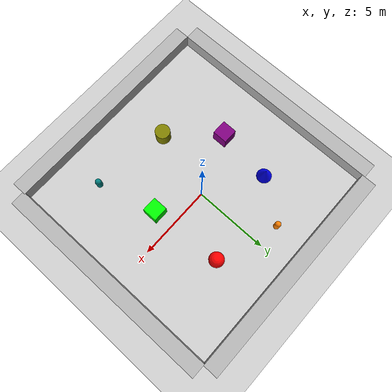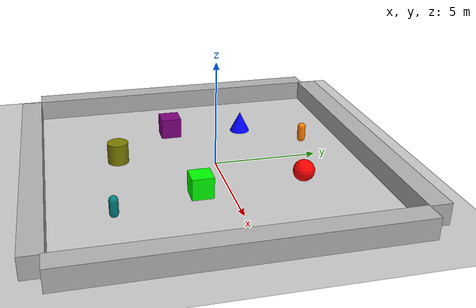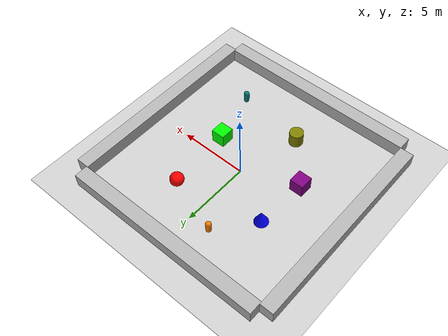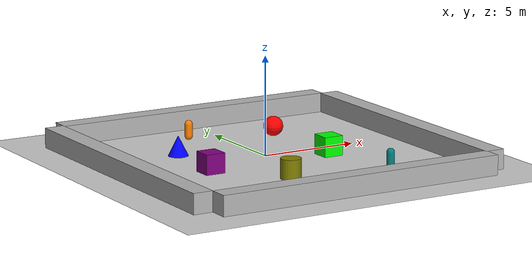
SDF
<sdf version='1.10'>
  <world name='empty'>
    <physics name='1ms' type='ignored'>
      <max_step_size>0.001</max_step_size>
      <real_time_factor>1</real_time_factor>
      <real_time_update_rate>1000</real_time_update_rate>
    </physics>
    <plugin
      filename="gz-sim-physics-system"
      name="gz::sim::systems::Physics">
    </plugin>
    <plugin
      filename="gz-sim-user-commands-system"
      name="gz::sim::systems::UserCommands">
    </plugin>
    <plugin
      filename="gz-sim-scene-broadcaster-system"
      name="gz::sim::systems::SceneBroadcaster">
    </plugin>
    <plugin
      filename="gz-sim-sensors-system"
      name="gz::sim::systems::Sensors">
      <render_engine>ogre2</render_engine>
    </plugin>
    <plugin
      filename="gz-sim-contact-system"
      name="gz::sim::systems::Contact">
    </plugin>
    <plugin filename="gz-sim-imu-system"
        name="gz::sim::systems::Imu">
    </plugin>
    <gravity>0 0 -9.8000000000000007</gravity>
    <magnetic_field>5.5644999999999998e-06 2.2875799999999999e-05 -4.2388400000000002e-05</magnetic_field>
    <atmosphere type='adiabatic'/>
    <scene>
      <ambient>0.400000006 0.400000006 0.400000006 1</ambient>
      <background>0.699999988 0.699999988 0.699999988 1</background>
      <shadows>true</shadows>
    </scene>
    <model name='ground_plane'>
      <static>true</static>
      <link name='link'>
        <collision name='collision'>
          <geometry>
            <plane>
              <normal>0 0 1</normal>
              <size>100 100</size>
            </plane>
          </geometry>
          <surface>
            <friction>
              <ode/>
            </friction>
            <bounce/>
            <contact/>
          </surface>
        </collision>
        <visual name='visual'>
          <geometry>
            <plane>
              <normal>0 0 1</normal>
              <size>100 100</size>
            </plane>
          </geometry>
          <material>
            <ambient>0.800000012 0.800000012 0.800000012 1</ambient>
            <diffuse>0.800000012 0.800000012 0.800000012 1</diffuse>
            <specular>0.800000012 0.800000012 0.800000012 1</specular>
          </material>
        </visual>
        <pose>0 0 0 0 0 0</pose>
        <inertial>
          <pose>0 0 0 0 0 0</pose>
          <mass>1</mass>
          <inertia>
            <ixx>1</ixx>
            <ixy>0</ixy>
            <ixz>0</ixz>
            <iyy>1</iyy>
            <iyz>0</iyz>
            <izz>1</izz>
          </inertia>
        </inertial>
        <enable_wind>false</enable_wind>
      </link>
      <pose>0 0 0 0 0 0</pose>
      <self_collide>false</self_collide>
    </model>
    <model name='box'>
      <pose>0.00046779279118785918 7.350563920146965 0.49999916696725671 -6.3173055891618251e-07 -1.4620414608779951e-13 0.0020253786810243458</pose>
      <link name='box_link'>
        <inertial>
          <inertia>
            <ixx>0.16666</ixx>
            <ixy>0</ixy>
            <ixz>0</ixz>
            <iyy>0.16666</iyy>
            <iyz>0</iyz>
            <izz>0.16666</izz>
          </inertia>
          <mass>1</mass>
          <pose>0 0 0 0 0 0</pose>
        </inertial>
        <collision name='box_collision'>
          <geometry>
            <box>
              <size>15 1 1</size>
            </box>
          </geometry>
          <surface>
            <friction>
              <ode/>
            </friction>
            <bounce/>
            <contact/>
          </surface>
        </collision>
        <visual name='box_visual'>
          <geometry>
            <box>
              <size>15 1 1</size>
            </box>
          </geometry>
          <material>
            <ambient>0.300000012 0.300000012 0.300000012 1</ambient>
            <diffuse>0.699999988 0.699999988 0.699999988 1</diffuse>
            <specular>1 1 1 1</specular>
          </material>
        </visual>
        <pose>0 0 0 0 0 0</pose>
        <enable_wind>false</enable_wind>
      </link>
      <static>false</static>
      <self_collide>false</self_collide>
    </model>
    <model name='box_1'>
      <pose>-7.9766097283780359 -0.48292632560844306 0.49999916696767133 1.7718482814629793e-13 -6.1450268169905639e-07 0.0029941049065981373</pose>
      <link name='box_link'>
        <inertial>
          <inertia>
            <ixx>0.16666</ixx>
            <ixy>0</ixy>
            <ixz>0</ixz>
            <iyy>0.16666</iyy>
            <iyz>0</iyz>
            <izz>0.16666</izz>
          </inertia>
          <mass>1</mass>
          <pose>0 0 0 0 0 0</pose>
        </inertial>
        <collision name='box_collision'>
          <geometry>
            <box>
              <size>1 15 1</size>
            </box>
          </geometry>
          <surface>
            <friction>
              <ode/>
            </friction>
            <bounce/>
            <contact/>
          </surface>
        </collision>
        <visual name='box_visual'>
          <geometry>
            <box>
              <size>1 15 1</size>
            </box>
          </geometry>
          <material>
            <ambient>0.300000012 0.300000012 0.300000012 1</ambient>
            <diffuse>0.699999988 0.699999988 0.699999988 1</diffuse>
            <specular>1 1 1 1</specular>
          </material>
        </visual>
        <pose>0 0 0 0 0 0</pose>
        <enable_wind>false</enable_wind>
      </link>
      <static>false</static>
      <self_collide>false</self_collide>
    </model>
    <model name='box_2'>
      <pose>0.034181386424863874 -8.4758839000007171 0.499999166970724 1.7888095584973222e-09 -3.9931214099910344e-09 0.00074687683584350188</pose>
      <link name='box_link'>
        <inertial>
          <inertia>
            <ixx>0.16666</ixx>
            <ixy>0</ixy>
            <ixz>0</ixz>
            <iyy>0.16666</iyy>
            <iyz>0</iyz>
            <izz>0.16666</izz>
          </inertia>
          <mass>1</mass>
          <pose>0 0 0 0 0 0</pose>
        </inertial>
        <collision name='box_collision'>
          <geometry>
            <box>
              <size>15 1 1</size>
            </box>
          </geometry>
          <surface>
            <friction>
              <ode/>
            </friction>
            <bounce/>
            <contact/>
          </surface>
        </collision>
        <visual name='box_visual'>
          <geometry>
            <box>
              <size>15 1 1</size>
            </box>
          </geometry>
          <material>
            <ambient>0.300000012 0.300000012 0.300000012 1</ambient>
            <diffuse>0.699999988 0.699999988 0.699999988 1</diffuse>
            <specular>1 1 1 1</specular>
          </material>
        </visual>
        <pose>0 0 0 0 0 0</pose>
        <enable_wind>false</enable_wind>
      </link>
      <static>false</static>
      <self_collide>false</self_collide>
    </model>
    <model name='box_3'>
      <pose>7.936460775149297 -0.63278862637200761 0.49999916696276531 8.0829892793003558e-12 8.983090558344082e-07 0.0034453365157053411</pose>
      <link name='box_link'>
        <inertial>
          <inertia>
            <ixx>0.16666</ixx>
            <ixy>0</ixy>
            <ixz>0</ixz>
            <iyy>0.16666</iyy>
            <iyz>0</iyz>
            <izz>0.16666</izz>
          </inertia>
          <mass>1</mass>
          <pose>0 0 0 0 0 0</pose>
        </inertial>
        <collision name='box_collision'>
          <geometry>
            <box>
              <size>1 15 1</size>
            </box>
          </geometry>
          <surface>
            <friction>
              <ode/>
            </friction>
            <bounce/>
            <contact/>
          </surface>
        </collision>
        <visual name='box_visual'>
          <geometry>
            <box>
              <size>1 15 1</size>
            </box>
          </geometry>
          <material>
            <ambient>0.300000012 0.300000012 0.300000012 1</ambient>
            <diffuse>0.699999988 0.699999988 0.699999988 1</diffuse>
            <specular>1 1 1 1</specular>
          </material>
        </visual>
        <pose>0 0 0 0 0 0</pose>
        <enable_wind>false</enable_wind>
      </link>
      <static>false</static>
      <self_collide>false</self_collide>
    </model>
    <model name='sphere'>
      <pose>2.5296065884955112 3.4921691319231716 0.499999999902001 0 0 0</pose>
      <link name='sphere_link'>
        <inertial>
          <inertia>
            <ixx>0.10000000000000001</ixx>
            <ixy>0</ixy>
            <ixz>0</ixz>
            <iyy>0.10000000000000001</iyy>
            <iyz>0</iyz>
            <izz>0.10000000000000001</izz>
          </inertia>
          <mass>1</mass>
          <pose>0 0 0 0 0 0</pose>
        </inertial>
        <collision name='sphere_collision'>
          <geometry>
            <sphere>
              <radius>0.5</radius>
            </sphere>
          </geometry>
          <surface>
            <friction>
              <ode/>
            </friction>
            <bounce/>
            <contact/>
          </surface>
        </collision>
        <visual name='sphere_visual'>
          <geometry>
            <sphere>
              <radius>0.5</radius>
            </sphere>
          </geometry>
          <material>
            <ambient>0.300000012 0.300000012 0.300000012 1</ambient>
            <diffuse>1 0 0 1</diffuse>
            <specular>1 1 1 1</specular>
          </material>
        </visual>
        <pose>0 0 0 0 0 0</pose>
        <enable_wind>false</enable_wind>
      </link>
      <static>false</static>
      <self_collide>false</self_collide>
    </model>
    <model name='box_0'>
      <pose>2.8093957135621821 -1.3408880546552746 0.49999999990199806 6.2287739151293738e-22 9.3279666454713669e-22 -3.6315533669320137e-22</pose>
      <link name='box_link'>
        <inertial>
          <inertia>
            <ixx>0.16666</ixx>
            <ixy>0</ixy>
            <ixz>0</ixz>
            <iyy>0.16666</iyy>
            <iyz>0</iyz>
            <izz>0.16666</izz>
          </inertia>
          <mass>1</mass>
          <pose>0 0 0 0 0 0</pose>
        </inertial>
        <collision name='box_collision'>
          <geometry>
            <box>
              <size>1 1 1</size>
            </box>
          </geometry>
          <surface>
            <friction>
              <ode/>
            </friction>
            <bounce/>
            <contact/>
          </surface>
        </collision>
        <visual name='box_visual'>
          <geometry>
            <box>
              <size>1 1 1</size>
            </box>
          </geometry>
          <material>
            <ambient>0.300000012 0.300000012 0.300000012 1</ambient>
            <diffuse>0 1 0 1</diffuse>
            <specular>1 1 1 1</specular>
          </material>
        </visual>
        <pose>0 0 0 0 0 0</pose>
        <enable_wind>false</enable_wind>
      </link>
      <static>false</static>
      <self_collide>false</self_collide>
    </model>
    <model name='cone'>
      <pose>-3.6437354960799673 2.1937068431939766 0.49999999993296756 5.2539673238603227e-17 -7.7132841034849224e-10 -2.2042306062451038e-22</pose>
      <link name='cone_link'>
        <inertial>
          <inertia>
            <ixx>0.074999999999999997</ixx>
            <ixy>0</ixy>
            <ixz>0</ixz>
            <iyy>0.074999999999999997</iyy>
            <iyz>0</iyz>
            <izz>0.074999999999999997</izz>
          </inertia>
          <mass>1</mass>
          <pose>0 0 0 0 0 0</pose>
        </inertial>
        <collision name='cone_collision'>
          <geometry>
            <cone>
              <radius>0.5</radius>
              <length>1</length>
            </cone>
          </geometry>
          <surface>
            <friction>
              <ode/>
            </friction>
            <bounce/>
            <contact/>
          </surface>
        </collision>
        <visual name='cone_visual'>
          <geometry>
            <cone>
              <radius>0.5</radius>
              <length>1</length>
            </cone>
          </geometry>
          <material>
            <ambient>0.300000012 0.300000012 0.300000012 1</ambient>
            <diffuse>0 0 1 1</diffuse>
            <specular>1 1 1 1</specular>
          </material>
        </visual>
        <pose>0 0 0 0 0 0</pose>
        <enable_wind>false</enable_wind>
      </link>
      <static>false</static>
      <self_collide>false</self_collide>
    </model>
    <model name='cylinder'>
      <pose>-1.2484307406734008 -4.4958857374501831 0.49999942638036005 -8.7262126580520438e-20 2.49250825088523e-19 -4.958856091775334e-21</pose>
      <link name='cylinder_link'>
        <inertial>
          <inertia>
            <ixx>0.14580000000000001</ixx>
            <ixy>0</ixy>
            <ixz>0</ixz>
            <iyy>0.14580000000000001</iyy>
            <iyz>0</iyz>
            <izz>0.125</izz>
          </inertia>
          <mass>1</mass>
          <pose>0 0 0 0 0 0</pose>
        </inertial>
        <collision name='cylinder_collision'>
          <geometry>
            <cylinder>
              <radius>0.5</radius>
              <length>1</length>
            </cylinder>
          </geometry>
          <surface>
            <friction>
              <ode/>
            </friction>
            <bounce/>
            <contact/>
          </surface>
        </collision>
        <visual name='cylinder_visual'>
          <geometry>
            <cylinder>
              <radius>0.5</radius>
              <length>1</length>
            </cylinder>
          </geometry>
          <material>
            <ambient>0.300000012 0.300000012 0.300000012 1</ambient>
            <diffuse>0.5 0.5 0 1</diffuse>
            <specular>1 1 1 1</specular>
          </material>
        </visual>
        <pose>0 0 0 0 0 0</pose>
        <enable_wind>false</enable_wind>
      </link>
      <static>false</static>
      <self_collide>false</self_collide>
    </model>
    <model name='box_4'>
      <pose>-3.9126159150993303 -1.5074670470030442 0.49999999990199806 6.2287739151293738e-22 9.3279666454713669e-22 -3.6315533669320137e-22</pose>
      <link name='box_link'>
        <inertial>
          <inertia>
            <ixx>0.16666</ixx>
            <ixy>0</ixy>
            <ixz>0</ixz>
            <iyy>0.16666</iyy>
            <iyz>0</iyz>
            <izz>0.16666</izz>
          </inertia>
          <mass>1</mass>
          <pose>0 0 0 0 0 0</pose>
        </inertial>
        <collision name='box_collision'>
          <geometry>
            <box>
              <size>1 1 1</size>
            </box>
          </geometry>
          <surface>
            <friction>
              <ode/>
            </friction>
            <bounce/>
            <contact/>
          </surface>
        </collision>
        <visual name='box_visual'>
          <geometry>
            <box>
              <size>1 1 1</size>
            </box>
          </geometry>
          <material>
            <ambient>0.300000012 0.300000012 0.300000012 1</ambient>
            <diffuse>0.5 0 0.5 1</diffuse>
            <specular>1 1 1 1</specular>
          </material>
        </visual>
        <pose>0 0 0 0 0 0</pose>
        <enable_wind>false</enable_wind>
      </link>
      <static>false</static>
      <self_collide>false</self_collide>
    </model>
    <model name='capsule'>
      <pose>3.9006793926372403 -5.2249528698619292 0.499999999902001 0 0 0</pose>
      <link name='capsule_link'>
        <inertial>
          <inertia>
            <ixx>0.074153999999999998</ixx>
            <ixy>0</ixy>
            <ixz>0</ixz>
            <iyy>0.074153999999999998</iyy>
            <iyz>0</iyz>
            <izz>0.018769000000000001</izz>
          </inertia>
          <mass>1</mass>
          <pose>0 0 0 0 0 0</pose>
        </inertial>
        <collision name='capsule_collision'>
          <geometry>
            <capsule>
              <radius>0.20000000000000001</radius>
              <length>0.59999999999999998</length>
            </capsule>
          </geometry>
          <surface>
            <friction>
              <ode/>
            </friction>
            <bounce/>
            <contact/>
          </surface>
        </collision>
        <visual name='capsule_visual'>
          <geometry>
            <capsule>
              <radius>0.20000000000000001</radius>
              <length>0.59999999999999998</length>
            </capsule>
          </geometry>
          <material>
            <ambient>0.300000012 0.300000012 0.300000012 1</ambient>
            <diffuse>0 0.5 0.5 1</diffuse>
            <specular>1 1 1 1</specular>
          </material>
        </visual>
        <pose>0 0 0 0 0 0</pose>
        <enable_wind>false</enable_wind>
      </link>
      <static>false</static>
      <self_collide>false</self_collide>
    </model>
    <model name='capsule_0'>
      <pose>-1.5727799398242386 4.8823332561447401 0.499999999902001 0 0 0</pose>
      <link name='capsule_link'>
        <inertial>
          <inertia>
            <ixx>0.074153999999999998</ixx>
            <ixy>0</ixy>
            <ixz>0</ixz>
            <iyy>0.074153999999999998</iyy>
            <iyz>0</iyz>
            <izz>0.018769000000000001</izz>
          </inertia>
          <mass>1</mass>
          <pose>0 0 0 0 0 0</pose>
        </inertial>
        <collision name='capsule_collision'>
          <geometry>
            <capsule>
              <radius>0.20000000000000001</radius>
              <length>0.59999999999999998</length>
            </capsule>
          </geometry>
          <surface>
            <friction>
              <ode/>
            </friction>
            <bounce/>
            <contact/>
          </surface>
        </collision>
        <visual name='capsule_visual'>
          <geometry>
            <capsule>
              <radius>0.20000000000000001</radius>
              <length>0.59999999999999998</length>
            </capsule>
          </geometry>
          <material>
            <ambient>0.300000012 0.300000012 0.300000012 1</ambient>
            <diffuse>1 0.5 0 1</diffuse>
            <specular>1 1 1 1</specular>
          </material>
        </visual>
        <pose>0 0 0 0 0 0</pose>
        <enable_wind>false</enable_wind>
      </link>
      <static>false</static>
      <self_collide>false</self_collide>
    </model>
    <light name='sun' type='directional'>
      <pose>0 0 10 0 0 0</pose>
      <cast_shadows>true</cast_shadows>
      <intensity>1</intensity>
      <direction>-0.5 0.10000000000000001 -0.90000000000000002</direction>
      <diffuse>0.800000012 0.800000012 0.800000012 1</diffuse>
      <specular>0.200000003 0.200000003 0.200000003 1</specular>
      <attenuation>
        <range>1000</range>
        <linear>0.01</linear>
        <constant>0.90000000000000002</constant>
        <quadratic>0.001</quadratic>
      </attenuation>
      <spot>
        <inner_angle>0</inner_angle>
        <outer_angle>0</outer_angle>
        <falloff>0</falloff>
      </spot>
    </light>
  </world>
</sdf>
